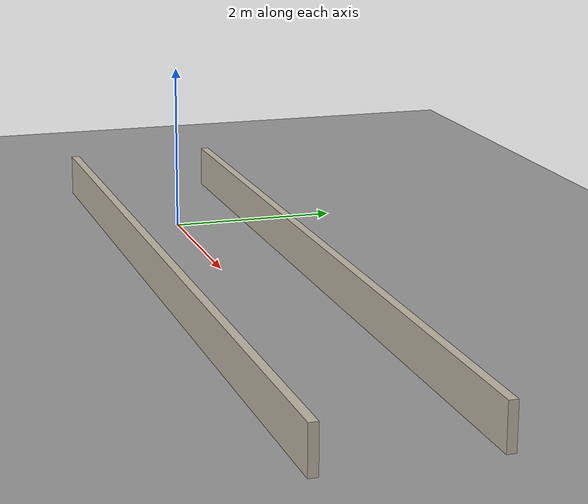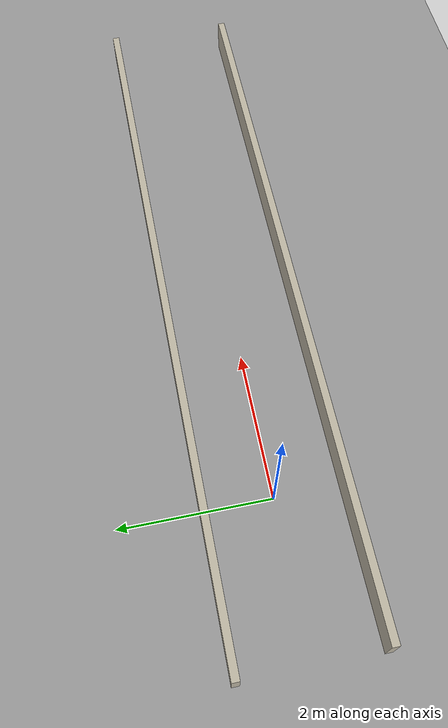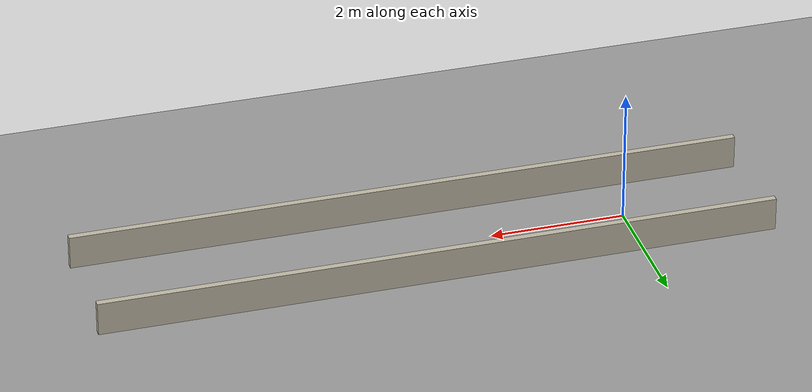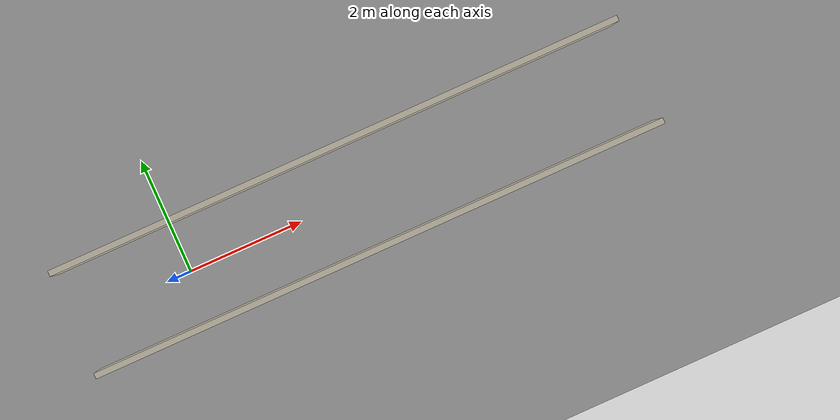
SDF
<?xml version="1.0" ?>
<!--
  Scene family: corridor. Two walls 1.8 m apart, open at both ends; the rover
  drives the +x axis. Props/lighting/materials randomized by scene_manager.py.
-->
<sdf version="1.9">
  <world name="corridor">
    <physics name="1ms" type="ignored">
      <max_step_size>0.001</max_step_size>
      <real_time_factor>1.0</real_time_factor>
    </physics>
    <plugin filename="gz-sim-physics-system" name="gz::sim::systems::Physics"/>
    <plugin filename="gz-sim-user-commands-system" name="gz::sim::systems::UserCommands"/>
    <plugin filename="gz-sim-sensors-system" name="gz::sim::systems::Sensors">
      <render_engine>ogre2</render_engine>
    </plugin>
    <plugin filename="gz-sim-scene-broadcaster-system" name="gz::sim::systems::SceneBroadcaster"/>

    <light type="directional" name="sun">
      <cast_shadows>true</cast_shadows>
      <pose>0 0 10 0 0 0</pose>
      <diffuse>0.35 0.35 0.35 1</diffuse>
      <specular>0.5 0.5 0.5 1</specular>
      <direction>-0.5 0.1 -0.9</direction>
    </light>

    <model name="ground_plane">
      <static>true</static>
      <link name="link">
        <collision name="collision">
          <geometry>
            <plane><normal>0 0 1</normal><size>200 200</size></plane>
          </geometry>
        </collision>
        <visual name="visual">
          <geometry>
            <plane><normal>0 0 1</normal><size>200 200</size></plane>
          </geometry>
          <material>
            <ambient>0.6 0.6 0.6 1</ambient>
            <diffuse>0.6 0.6 0.6 1</diffuse>
            <specular>0.1 0.1 0.1 1</specular>
          </material>
        </visual>
      </link>
    </model>

    <model name="wall_left">
      <static>true</static>
      <pose>3.0 0.9 0.25 0 0 0</pose>
      <link name="link">
        <collision name="collision">
          <geometry><box><size>10.0 0.1 0.5</size></box></geometry>
        </collision>
        <visual name="visual">
          <geometry><box><size>10.0 0.1 0.5</size></box></geometry>
          <material>
            <ambient>0.75 0.72 0.65 1</ambient>
            <diffuse>0.75 0.72 0.65 1</diffuse>
          </material>
        </visual>
      </link>
    </model>

    <model name="wall_right">
      <static>true</static>
      <pose>3.0 -0.9 0.25 0 0 0</pose>
      <link name="link">
        <collision name="collision">
          <geometry><box><size>10.0 0.1 0.5</size></box></geometry>
        </collision>
        <visual name="visual">
          <geometry><box><size>10.0 0.1 0.5</size></box></geometry>
          <material>
            <ambient>0.75 0.72 0.65 1</ambient>
            <diffuse>0.75 0.72 0.65 1</diffuse>
          </material>
        </visual>
      </link>
    </model>
  </world>
</sdf>
